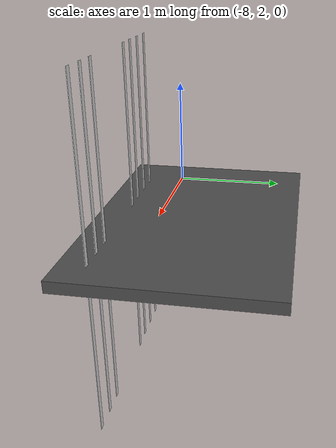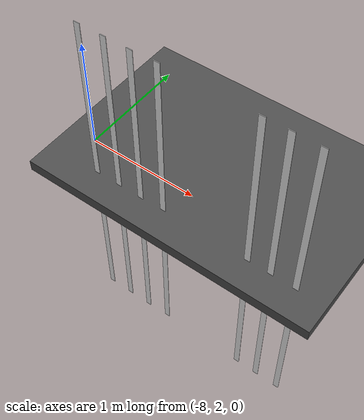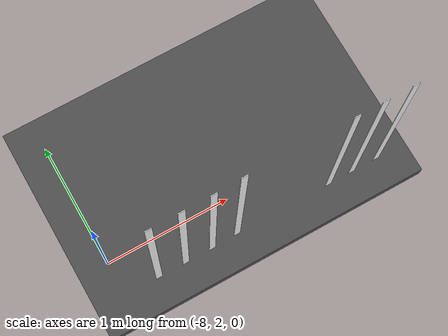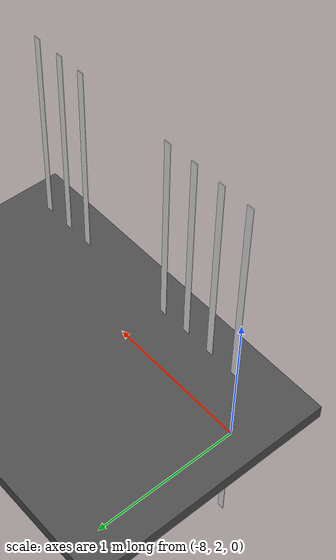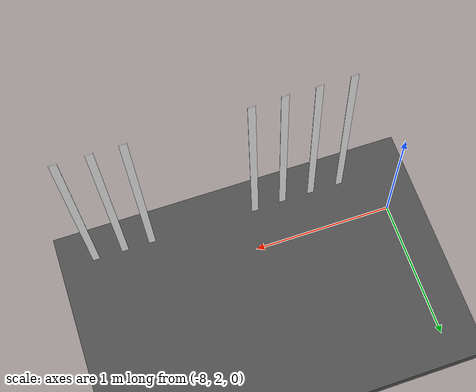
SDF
<sdf version="1.7">
 <world name="default">
  <model name="ground_plane">
   <static>1</static>
   <link name="link">
    <collision name="collision">
     <geometry><plane><normal>0 0 1</normal><size>100 100</size></plane></geometry>
     <surface><friction><ode><mu>100</mu><mu2>50</mu2></ode></friction></surface>
    </collision>
    <visual name="visual">
     <cast_shadows>0</cast_shadows>
     <geometry><plane><normal>0 0 1</normal><size>100 100</size></plane></geometry>
     <material>
      <script><uri>file://media/materials/scripts/gazebo.material</uri><name>Gazebo/Grey</name></script>
     </material>
    </visual>
   </link>
  </model>
  <model name="asphalt_plane">
   <static>1</static>
   <link name="link">
    <collision name="collision"><geometry><box><size>20 20 0.1</size></box></geometry></collision>
    <visual name="visual">
     <cast_shadows>0</cast_shadows>
     <geometry><box><size>20 20 0.1</size></box></geometry>
     <material>
      <script>
       <uri>model://asphalt_plane/materials/scripts</uri>
       <uri>model://asphalt_plane/materials/textures</uri>
       <name>vrc/asphalt</name>
      </script>
     </material>
    </visual>
    <velocity_decay><linear>0</linear><angular>0</angular></velocity_decay>
   </link>
   <pose>0.000359 -0.189252 0 0 -0 0</pose>
  </model>
  <model name="reflective_tape_5cm_clone_2_clone_2">
   <static>1</static>
   <pose>-7.72023 1.71968 0 0 -0 0</pose>
   <link name="link">
    <inertial>
     <mass>0.01</mass>
     <inertia><ixx>1e-06</ixx><ixy>0</ixy><ixz>0</ixz><iyy>1e-06</iyy><iyz>0</iyz><izz>1e-06</izz></inertia>
    </inertial>
    <collision name="collision">
     <laser_retro>1000</laser_retro>
     <geometry><box><size>0.05 0.005 3</size></box></geometry>
    </collision>
    <visual name="visual">
     <geometry><box><size>0.05 0.005 3</size></box></geometry>
     <material>
      <script><name>Gazebo/WhiteGlow</name><uri>file://media/materials/scripts/gazebo.material</uri></script>
      <ambient>1 1 1 1</ambient>
      <diffuse>1 1 1 1</diffuse>
      <specular>1 1 1 1</specular>
      <emissive>1 1 1 1</emissive>
     </material>
     <laser_retro>1000</laser_retro>
    </visual>
   </link>
  </model>
  <model name="reflective_tape_5cm_clone_2_clone_3">
   <static>1</static>
   <pose>-7.5007 1.71982 0 0 -0 0</pose>
   <link name="link">
    <inertial>
     <mass>0.01</mass>
     <inertia><ixx>1e-06</ixx><ixy>0</ixy><ixz>0</ixz><iyy>1e-06</iyy><iyz>0</iyz><izz>1e-06</izz></inertia>
    </inertial>
    <collision name="collision">
     <laser_retro>1000</laser_retro>
     <geometry><box><size>0.05 0.005 3</size></box></geometry>
    </collision>
    <visual name="visual">
     <geometry><box><size>0.05 0.005 3</size></box></geometry>
     <material>
      <script><name>Gazebo/WhiteGlow</name><uri>file://media/materials/scripts/gazebo.material</uri></script>
      <ambient>1 1 1 1</ambient>
      <diffuse>1 1 1 1</diffuse>
      <specular>1 1 1 1</specular>
      <emissive>1 1 1 1</emissive>
     </material>
     <laser_retro>1000</laser_retro>
    </visual>
   </link>
  </model>
  <model name="reflective_tape_5cm_clone_2_clone_4">
   <static>1</static>
   <pose>-7.2846 1.71958 0 0 -0 0</pose>
   <link name="link">
    <inertial>
     <mass>0.01</mass>
     <inertia><ixx>1e-06</ixx><ixy>0</ixy><ixz>0</ixz><iyy>1e-06</iyy><iyz>0</iyz><izz>1e-06</izz></inertia>
    </inertial>
    <collision name="collision">
     <laser_retro>1000</laser_retro>
     <geometry><box><size>0.05 0.005 3</size></box></geometry>
    </collision>
    <visual name="visual">
     <geometry><box><size>0.05 0.005 3</size></box></geometry>
     <material>
      <script><name>Gazebo/WhiteGlow</name><uri>file://media/materials/scripts/gazebo.material</uri></script>
      <ambient>1 1 1 1</ambient>
      <diffuse>1 1 1 1</diffuse>
      <specular>1 1 1 1</specular>
      <emissive>1 1 1 1</emissive>
     </material>
     <laser_retro>1000</laser_retro>
    </visual>
   </link>
  </model>
  <model name="reflective_tape_5cm_clone_2_clone_5">
   <static>1</static>
   <pose>-7.07385 1.72667 0 0 -0 0</pose>
   <link name="link">
    <inertial>
     <mass>0.01</mass>
     <inertia><ixx>1e-06</ixx><ixy>0</ixy><ixz>0</ixz><iyy>1e-06</iyy><iyz>0</iyz><izz>1e-06</izz></inertia>
    </inertial>
    <collision name="collision">
     <laser_retro>1000</laser_retro>
     <geometry><box><size>0.05 0.005 3</size></box></geometry>
    </collision>
    <visual name="visual">
     <geometry><box><size>0.05 0.005 3</size></box></geometry>
     <material>
      <script><name>Gazebo/WhiteGlow</name><uri>file://media/materials/scripts/gazebo.material</uri></script>
      <ambient>1 1 1 1</ambient>
      <diffuse>1 1 1 1</diffuse>
      <specular>1 1 1 1</specular>
      <emissive>1 1 1 1</emissive>
     </material>
     <laser_retro>1000</laser_retro>
    </visual>
   </link>
  </model>
  <model name="reflective_tape_5cm_clone_2_clone_7">
   <static>1</static>
   <pose>-6.30229 1.72356 0 0 -0 0</pose>
   <link name="link">
    <inertial>
     <mass>0.01</mass>
     <inertia><ixx>1e-06</ixx><ixy>0</ixy><ixz>0</ixz><iyy>1e-06</iyy><iyz>0</iyz><izz>1e-06</izz></inertia>
    </inertial>
    <collision name="collision">
     <laser_retro>1000</laser_retro>
     <geometry><box><size>0.05 0.005 3</size></box></geometry>
    </collision>
    <visual name="visual">
     <geometry><box><size>0.05 0.005 3</size></box></geometry>
     <material>
      <script><name>Gazebo/WhiteGlow</name><uri>file://media/materials/scripts/gazebo.material</uri></script>
      <ambient>1 1 1 1</ambient>
      <diffuse>1 1 1 1</diffuse>
      <specular>1 1 1 1</specular>
      <emissive>1 1 1 1</emissive>
     </material>
     <laser_retro>1000</laser_retro>
    </visual>
   </link>
  </model>
  <model name="reflective_tape_5cm_clone_2_clone_8">
   <static>1</static>
   <pose>-6.10345 1.72374 0 0 -0 0</pose>
   <link name="link">
    <inertial>
     <mass>0.01</mass>
     <inertia><ixx>1e-06</ixx><ixy>0</ixy><ixz>0</ixz><iyy>1e-06</iyy><iyz>0</iyz><izz>1e-06</izz></inertia>
    </inertial>
    <collision name="collision">
     <laser_retro>1000</laser_retro>
     <geometry><box><size>0.05 0.005 3</size></box></geometry>
    </collision>
    <visual name="visual">
     <geometry><box><size>0.05 0.005 3</size></box></geometry>
     <material>
      <script><name>Gazebo/WhiteGlow</name><uri>file://media/materials/scripts/gazebo.material</uri></script>
      <ambient>1 1 1 1</ambient>
      <diffuse>1 1 1 1</diffuse>
      <specular>1 1 1 1</specular>
      <emissive>1 1 1 1</emissive>
     </material>
     <laser_retro>1000</laser_retro>
    </visual>
   </link>
  </model>
  <model name="reflective_tape_5cm_clone_2_clone_9">
   <static>1</static>
   <pose>-5.89184 1.72338 0 0 -0 0</pose>
   <link name="link">
    <inertial>
     <mass>0.01</mass>
     <inertia><ixx>1e-06</ixx><ixy>0</ixy><ixz>0</ixz><iyy>1e-06</iyy><iyz>0</iyz><izz>1e-06</izz></inertia>
    </inertial>
    <collision name="collision">
     <laser_retro>1000</laser_retro>
     <geometry><box><size>0.05 0.005 3</size></box></geometry>
    </collision>
    <visual name="visual">
     <geometry><box><size>0.05 0.005 3</size></box></geometry>
     <material>
      <script><name>Gazebo/WhiteGlow</name><uri>file://media/materials/scripts/gazebo.material</uri></script>
      <ambient>1 1 1 1</ambient>
      <diffuse>1 1 1 1</diffuse>
      <specular>1 1 1 1</specular>
      <emissive>1 1 1 1</emissive>
     </material>
     <laser_retro>1000</laser_retro>
    </visual>
   </link>
  </model>
 </world>
</sdf>
